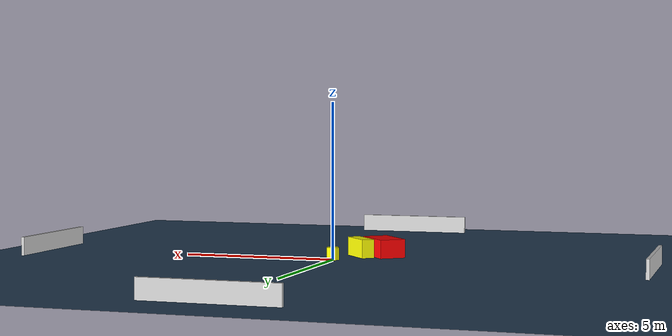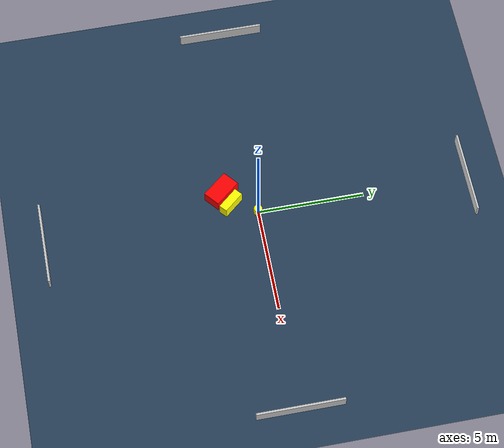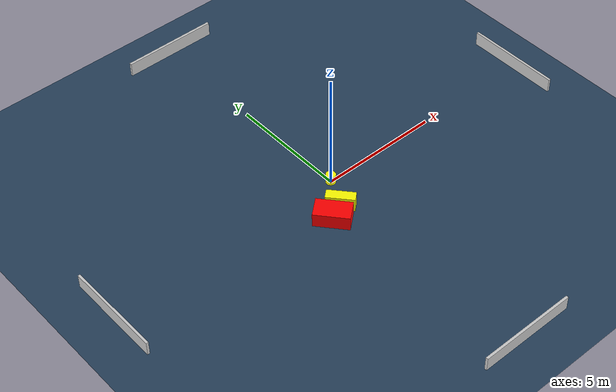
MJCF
<?xml version="1.0" ?>
<mujoco model="generated_environment">
  <option timestep="0.01" integrator="RK4" cone="elliptic"/>
  <default>
    <geom density="1"/>
  </default>
  <asset>
    <texture builtin="gradient" height="3072" name="skybox" rgb1="0.3 0.5 0.7" rgb2="0 0 0" type="skybox" width="512"/>
    <texture builtin="checker" height="300" name="groundplane" rgb1="0.2 0.3 0.4" rgb2="0.1 0.2 0.3" type="2d" width="300"/>
    <material name="groundplane" reflectance="0.2" texrepeat="5 5" texture="groundplane"/>
  </asset>
  <worldbody>
    <light dir="0 0 -1" directional="true" pos="0 0 1.5"/>
    <geom condim="3" friction="0.5 0.005 0.001" material="groundplane" name="floor" pos="0 0 0" size="0 0 0.05" type="plane"/>
    <body name="walls">
      <geom name="wall_1" condim="4" pos="-10.0 0.0 0.3" rgba="0.800000011920929 0.800000011920929 0.800000011920929 1.0" size="0.05 2.0 0.3" type="box"/>
      <geom name="wall_2" condim="4" pos="10.0 0.0 0.3" rgba="0.800000011920929 0.800000011920929 0.800000011920929 1.0" size="0.05 2.0 0.3" type="box"/>
      <geom name="wall_3" condim="4" pos="0.0 -10.0 0.3" rgba="0.800000011920929 0.800000011920929 0.800000011920929 1.0" size="2.0 0.05 0.3" type="box"/>
      <geom name="wall_4" condim="4" pos="0.0 10.0 0.3" rgba="0.800000011920929 0.800000011920929 0.800000011920929 1.0" size="2.0 0.05 0.3" type="box"/>
    </body>
    <body name="robot">
      <joint name="joint_x" type="slide" pos="0 0 0" axis="1 0 0"/>
      <joint name="joint_y" type="slide" pos="0 0 0" axis="0 1 0"/>
      <geom name="robot" type="cylinder" pos="0.0 0.0 0.2" size="0.2 0.2 0.0" mass="5.0" friction="1.0 0.005 0.0001" condim="4" rgba="1.0 1.0 0.0 1.0"/>
    </body>
    <body name="obstacle_1_movable">
      <geom name="obstacle_1_movable" condim="4" pos="-0.5682239871177811 -1.1886041110384147 0.3" euler="0 0 220.74008932538575" friction="0.0 0.005 0.001" rgba="1.0 1.0 0.0 1.0" size="0.20555529073054354 0.5738528531361531 0.3" type="box" mass="0.1"/>
      <joint type="free"/>
    </body>
    <body name="obstacle_2_static">
      <geom name="obstacle_2_static" condim="4" pos="-1.2512184580004335 -1.51726273756764 0.3" euler="0 0 309.9021720446181" friction="0.0 0.005 0.001" rgba="1.0 0.0 0.0 1.0" size="0.7129542552253632 0.42187545611077404 0.3" type="box"/>
    </body>
  </worldbody>
  <actuator>
    <motor name="actuator_x" joint="joint_x" gear="1" ctrlrange="-1 1"/>
    <motor name="actuator_y" joint="joint_y" gear="1" ctrlrange="-1 1"/>
  </actuator>
</mujoco>
